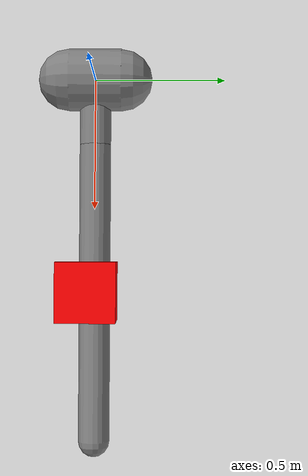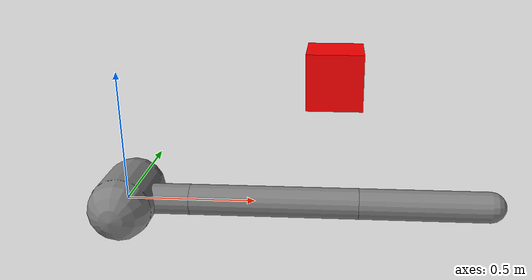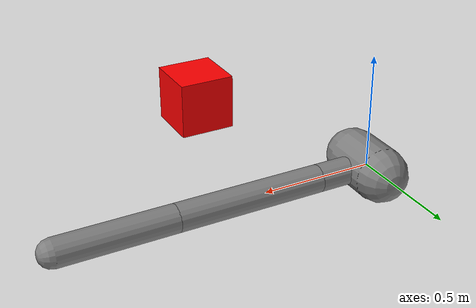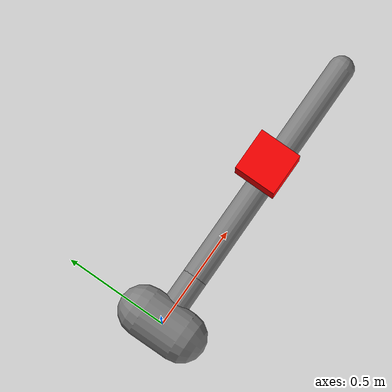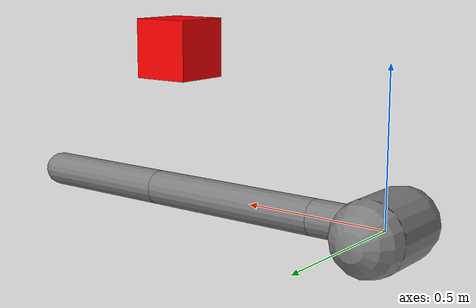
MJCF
<mujoco model="arm3d">
    <compiler inertiafromgeom="true" angle="radian" coordinate="local" />
    <option timestep="0.01" gravity="0 0 0" iterations="20" integrator="Euler" />

    <default>
        <joint armature='0.04' damping="1" limited="true"/>
        <geom friction=".8 .1 .1" density="500" margin="0.002" condim="1" contype="1" conaffinity="1"/>
    </default>

    <worldbody>
        <body name="palm" pos="0 0 0">
            <geom type="capsule" fromto="0 -0.1 0 0 0.1 0" size="0.12"/>

            <body name="proximal_1" pos="0 0 0">
                <joint name="proximal_j_1" type="hinge" pos="0 0 0" axis="0 1 0" range="-2.5236 2.3963" damping="1.0" />
                <geom type="capsule" fromto="0 0 0 0.25 0 0" size="0.06" contype="1" conaffinity="1"/>
                <body name="distal_1" pos="0.25 0 0">
                    <joint name="distal_j_1" type="hinge" pos="0 0 0" axis="0 1 0" range="-2.3213 2.3" damping="1.0"/>
                    <geom type="capsule" fromto="0 0 0 0.65 0 0" size="0.06" contype="1" conaffinity="1"/>
                    <body name="distal_2" pos="0.65 0 0">
                        <joint name="distal_j_2" type="hinge" pos="0 0 0" axis="0 1 0" range="-2.3213 2.3" damping="1.0"/>
                        <geom type="capsule" fromto="0 0 0 0.5 0 0" size="0.06" contype="1" conaffinity="1"/>
                        <body name="distal_4" pos="0.5 0 0">
                            <site name="tip arm" pos="0 0 0" size="0.01" />
                        </body>
                    </body>
                </body>
            </body>
        </body>

        <body name="goal" pos="0.8 0.0 0.5">
            <geom rgba="1. 0. 0. 1" type="box" size="0.1 0.1 0.1" density='0.00001' contype="0" conaffinity="0"/>
            <site name="goal pos" pos="0 0 0" size="0.01" />
        </body>
        <body name="anti_goal" pos="0.8 0.0 0.5">
          <geom rgba="0. 1. 0. 1" type="box" size="0.1 0.1 0.1" density='0.00001' contype="0" conaffinity="0"/>
          <site name="anti goal pos" pos="0 0 0" size="0.01" />
	</body>
    </worldbody>

    <actuator>
        <motor joint="proximal_j_1" ctrlrange="-2 2" ctrllimited="true"/>
        <motor joint="distal_j_1" ctrlrange="-2 2" ctrllimited="true"/>
        <motor joint="distal_j_2" ctrlrange="-2 2" ctrllimited="true"/>
    </actuator>
</mujoco>
